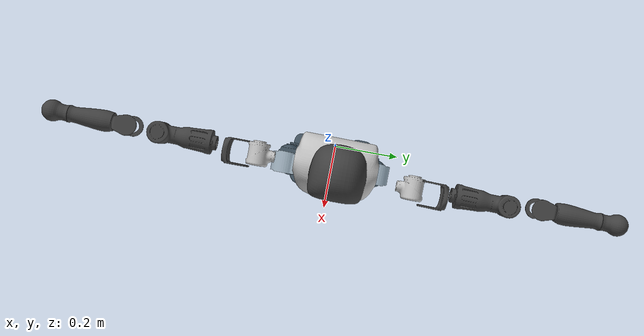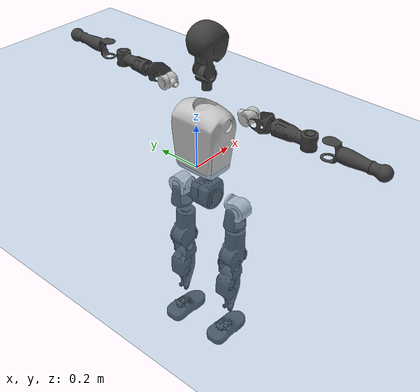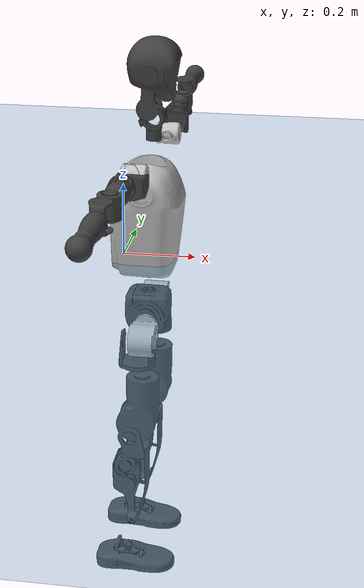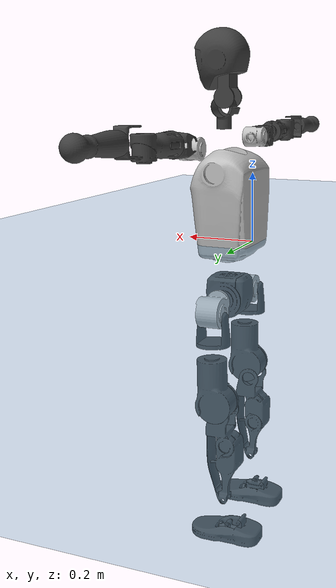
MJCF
<mujoco model="T1">
  <compiler angle="radian" assetdir="assets" balanceinertia="true" inertiafromgeom="false"/>

  <option timestep="0.005" density="1.2" viscosity="2e-05"/>

  <size nkey="1"/>

  <visual>
    <quality shadowsize="8192"/>
    <map shadowclip="0.5"/>
  </visual>

  <default>
    <default class="/">
      <joint armature="0.01" damping="0.01" frictionloss="0.1"/>
      <geom contype="0" conaffinity="0" group="1" solref="-1000 -80"/>
      <site size="0.01 0.005 0.005" group="5"/>
      <general forcelimited="true" biastype="affine" gainprm="25" biasprm="0 -25 -0.6"/>
      <default class="t1">
        <geom rgba="0.25 0.25 0.25 1"/>
        <default class="visual">
          <geom type="mesh" group="2"/>
        </default>
        <default class="collision">
          <geom group="3"/>
        </default>
        <default class="foot">
          <geom size="0.1115 0.05 0.015" type="box" condim="6" group="4" priority="1" solimp="0.015 1 0.015"/>
        </default>
        <default class="reward_collision_sphere">
          <geom group="5" rgba="1 0 0 1"/>
        </default>
      </default>
    </default>
  </default>

  <asset>
    <texture type="skybox" colorspace="auto" name="//unnamed_texture_0" builtin="gradient" rgb1="0.95 0.95 0.95" rgb2="0.95 0.95 0.95" width="100" height="600"/>
    <texture type="2d" colorspace="auto" name="texplane" builtin="checker" rgb1="0.345 0.575 0.748" rgb2="0.345 0.575 0.748" markrgb="1 1 1" width="512" height="512"/>
    <material name="MatPlane" class="/" texture="texplane" texuniform="true" texrepeat="2 2" specular="0.9"/>
    <mesh name="Trunk" class="/" file="Trunk.stl"/>
    <mesh name="H1" class="/" file="H1.stl"/>
    <mesh name="H2" class="/" file="H2.stl"/>
    <mesh name="AL1" class="/" file="AL1.stl"/>
    <mesh name="AL2" class="/" file="AL2.stl"/>
    <mesh name="AL3" class="/" file="AL3.stl"/>
    <mesh name="left_hand_link" class="/" file="left_hand_link.stl"/>
    <mesh name="AR1" class="/" file="AR1.stl"/>
    <mesh name="AR2" class="/" file="AR2.stl"/>
    <mesh name="AR3" class="/" file="AR3.stl"/>
    <mesh name="right_hand_link" class="/" file="right_hand_link.stl"/>
    <mesh name="Waist" class="/" file="Waist.stl"/>
    <mesh name="Hip_Pitch_Left" class="/" file="Hip_Pitch_Left.stl"/>
    <mesh name="Hip_Roll_Left" class="/" file="Hip_Roll_Left.stl"/>
    <mesh name="Hip_Yaw_Left" class="/" file="Hip_Yaw_Left.stl"/>
    <mesh name="Shank_Left" class="/" file="Shank_Left.stl"/>
    <mesh name="Ankle_Cross_Left" class="/" file="Ankle_Cross_Left.stl"/>
    <mesh name="left_foot_link" class="/" file="left_foot_link.stl"/>
    <mesh name="Hip_Pitch_Right" class="/" file="Hip_Pitch_Right.stl"/>
    <mesh name="Hip_Roll_Right" class="/" file="Hip_Roll_Right.stl"/>
    <mesh name="Hip_Yaw_Right" class="/" file="Hip_Yaw_Right.stl"/>
    <mesh name="Shank_Right" class="/" file="Shank_Right.stl"/>
    <mesh name="Ankle_Cross_Right" class="/" file="Ankle_Cross_Right.stl"/>
    <mesh name="right_foot_link" class="/" file="right_foot_link.stl"/>
  </asset>

  <worldbody>
    <geom name="floor" class="/" size="100 100 0.125" type="plane" group="0" material="MatPlane"/>
    <light name="toplight_shadow" class="/" pos="0 0 5" dir="0.0990148 0.0990148 -0.990148" type="directional" ambient="0.04 0.04 0.04" diffuse="0.55 0.55 0.55" specular="0.12 0.12 0.12"/>
    <light name="toplight_fill" class="/" pos="0 0 5" dir="0.0990148 0.0990148 -0.990148" type="directional" castshadow="false" ambient="0.04 0.04 0.04" diffuse="0.3 0.3 0.3" specular="0.08 0.08 0.08"/>
    <body name="trunk" childclass="t1" pos="0.00867815 0.0133072 -0.0101119" quat="0.999986 -0.00127063 0.00196941 -0.00477154">
      <inertial pos="0.0604769 0.00703383 0.134049" quat="0.999618 0.0110085 -0.0104543 -0.0230942" mass="29.9442" diaginertia="0.146806 0.499312 0.223269"/>
      <joint name="//unnamed_joint_0" type="free" armature="0" damping="0" frictionloss="0"/>
      <geom name="//unnamed_geom_1" class="visual" rgba="0.76 0.76 0.76 1" mesh="Trunk"/>
      <geom name="//unnamed_geom_2" class="collision" size="0.10092 0.13456 0.20184" pos="0.0672134 0 0.163327" type="box"/>
      <geom name="//unnamed_geom_3" class="reward_collision_sphere" size="0.154744" pos="0.0672134 0 0.136105"/>
      <geom name="//unnamed_geom_4" class="reward_collision_sphere" size="0.020184" pos="0.0672134 0.132219 0"/>
      <geom name="//unnamed_geom_5" class="reward_collision_sphere" size="0.020184" pos="0.0672134 -0.132219 0"/>
      <geom name="//unnamed_geom_6" class="reward_collision_sphere" size="0.020184" pos="0.0672134 0.16644 0.24499"/>
      <geom name="//unnamed_geom_7" class="reward_collision_sphere" size="0.020184" pos="0.0672134 -0.16644 0.24499"/>
      <site name="imu" pos="0.0561425 0.0739031 -0.012584" size="0.013456"/>
      <camera name="track" pos="0 -3.11104 0" quat="0.707107 0.707107 0 0" mode="trackcom"/>
      <camera name="ego_camera" pos="0.136667 0 0.571643" quat="-0.5 -0.5 0.5 0.5"/>
      <body name="H1" pos="0.0709641 0.00355497 0.333112" quat="0.999988 0.00263976 0.0041398 0.000904368">
        <inertial pos="-0.0106333 -0.00567505 0.0673414" quat="0.786736 0.017499 -0.0680512 0.613278" mass="1.04021" diaginertia="0.000369108 0.00160056 0.000734099"/>
        <joint name="AAHead_yaw" pos="0 0 0" axis="0.0396118 -0.0625705 0.997254" stiffness="0.0100629" range="-1.34189 1.47794" armature="0.00599661" damping="0.0086343" frictionloss="0.215708"/>
        <geom name="//unnamed_geom_8" class="visual" mesh="H1"/>
        <body name="H2" pos="-0.0141535 0.00445344 0.0874644" quat="0.999998 0.00121221 -0.00138763 0.000441361">
          <inertial pos="0.0045672 0.0178895 0.135208" quat="0.990501 0.0787194 -0.0778992 -0.0814981" mass="1.77635" diaginertia="0.00402409 0.0247301 0.00954361"/>
          <joint name="Head_pitch" pos="0 0 0" axis="0.0640849 -0.997866 0.0124807" stiffness="0.0444345" range="-1.12417 0.157176" armature="0.00980493" damping="0" frictionloss="0.189901"/>
          <geom name="//unnamed_geom_9" class="visual" mesh="H2"/>
          <geom name="//unnamed_geom_10" class="collision" size="0.107648" pos="0.0112022 0 0.149716"/>
          <geom name="//unnamed_geom_11" class="reward_collision_sphere" size="0.121104" pos="0.0224045 0 0.136105"/>
        </body>
      </body>
      <body name="AL1" pos="0.0754062 0.175496 0.293155" quat="0.999995 0.00293668 -0.00119858 0.000633858">
        <inertial pos="-0.00516391 0.0628127 0.016083" quat="0.449185 0.536028 -0.48345 0.526482" mass="1.00713" diaginertia="0.00192723 0.00956283 0.00113042"/>
        <joint name="Left_Shoulder_Pitch" pos="0 0 0" axis="0.0529819 0.997435 0.0481368" range="-3.30577 1.39543" armature="0.018116" damping="0.0272252" frictionloss="0.104006"/>
        <geom name="//unnamed_geom_12" class="visual" rgba="0.76 0.76 0.76 1" mesh="AL1"/>
        <body name="AL2" pos="0.00697146 0.0858028 0.0137222" quat="0.99996 0.00380917 0.00369187 -0.00719134">
          <inertial pos="0.00410285 0.0762898 -0.000938493" quat="0.489032 0.511369 -0.488563 0.510544" mass="0.39786" diaginertia="0.000683151 0.00355266 0.000838217"/>
          <joint name="Left_Shoulder_Roll" pos="0 0 0" axis="-0.996163 0.081066 0.0329825" stiffness="0.0806646" range="-1.8778 1.88239" armature="0.0197126" damping="0.0911622" frictionloss="0.0343042"/>
          <geom name="//unnamed_geom_13" class="visual" mesh="AL2"/>
          <body name="AL3" pos="-0.0112602 0.0771753 0.00403626" quat="0.99997 0.00398554 0.00598398 0.00298466">
            <inertial pos="0.000538127 0.146632 0.00757937" quat="0.73892 0.673423 -0.015356 -0.0162304" mass="2.18038" diaginertia="0.0248961 0.107818 0.00393951"/>
            <joint name="Left_Elbow_Pitch" pos="0 0 0" axis="-0.060775 -0.997779 -0.0272782" stiffness="0.0672328" range="-2.61769 2.59671" armature="0.00236138" damping="0.0891965" frictionloss="0.0490165"/>
            <geom name="//unnamed_geom_14" class="visual" mesh="AL3"/>
            <geom name="//unnamed_geom_15" class="collision" size="0.040368 0.10092" pos="0 0.0777759 0" quat="0.707105 0.707108 0 0" type="cylinder"/>
            <geom name="//unnamed_geom_16" class="reward_collision_sphere" size="0.0484416"/>
            <body name="left_hand_link" pos="-0.00941458 0.229412 0.0157939" quat="0.999983 -0.00457136 -0.00310093 -0.00196168">
              <inertial pos="0.00117242 0.169492 0.0139342" quat="0.704247 0.709648 0.0151218 0.0144229" mass="0.699131" diaginertia="0.012786 0.0790872 0.000935033"/>
              <joint name="Left_Elbow_Yaw" pos="0 0 0" axis="0.0492526 0.0236209 0.998507" range="-2.4279 -0.0331049" armature="0.017753" damping="0.00517412" frictionloss="0.0630267"/>
              <geom name="//unnamed_geom_17" class="visual" mesh="left_hand_link"/>
              <geom name="//unnamed_geom_18" class="collision" size="0.040368 0.11774" pos="0 0.202217 0" quat="0.707105 0.707108 0 0" type="cylinder"/>
              <geom name="//unnamed_geom_19" class="reward_collision_sphere" size="0.06728"/>
              <geom name="//unnamed_geom_20" class="reward_collision_sphere" size="0.047096" pos="0 0.171107 0"/>
              <geom name="//unnamed_geom_21" class="reward_collision_sphere" size="0.047096" pos="0 0.334436 0"/>
            </body>
          </body>
        </body>
      </body>
      <body name="AR1" pos="0.061566 -0.173245 0.298308" quat="0.999988 1.38042e-05 0.00460826 0.00180947">
        <inertial pos="-0.00230433 -0.0550457 -0.0152531" quat="0.498373 0.505871 -0.500827 0.494865" mass="1.28135" diaginertia="0.00259623 0.0115249 0.00106492"/>
        <joint name="Right_Shoulder_Pitch" pos="0 0 0" axis="-0.00516628 -0.999987 -0.000492802" range="-1.08355 3.30778" armature="0.0203976" damping="0" frictionloss="0.0951979"/>
        <geom name="//unnamed_geom_22" class="visual" rgba="0.76 0.76 0.76 1" mesh="AR1"/>
        <body name="AR2" pos="0.00429168 -0.0870677 -0.00278328" quat="0.999999 -0.00057938 0.000870229 0.000360145">
          <inertial pos="0.00351143 -0.0600571 0.0160398" quat="0.487728 0.465972 -0.551886 0.49032" mass="0.311906" diaginertia="0.000742107 0.00344323 0.00088758"/>
          <joint name="Right_Shoulder_Roll" pos="0 0 0" axis="-1 0.000678525 -0.000298002" range="-1.5952 1.27777" armature="0.013724" damping="0.0847183" frictionloss="0.133476"/>
          <geom name="//unnamed_geom_23" class="visual" mesh="AR2"/>
          <body name="AR3" pos="-0.0123755 -0.0895993 0.0112269" quat="0.999998 0.000375468 -0.0017528 -0.000358614">
            <inertial pos="-0.00796302 -0.122523 0.00493289" quat="0.7108 0.703389 -0.00265856 0.000401314" mass="2.15201" diaginertia="0.0206969 0.0891558 0.00228004"/>
            <joint name="Right_Elbow_Pitch" pos="0 0 0" axis="0.0302996 0.999196 -0.0262425" stiffness="0.0561828" range="-2.25879 2.27753" armature="0.00304606" damping="0.00269599" frictionloss="0.236306"/>
            <geom name="//unnamed_geom_24" class="visual" mesh="AR3"/>
            <geom name="//unnamed_geom_25" class="collision" size="0.040368 0.10092" pos="0 -0.0777759 0" quat="0.707105 0.707108 0 0" type="cylinder"/>
            <geom name="//unnamed_geom_26" class="reward_collision_sphere" size="0.0484416"/>
            <body name="right_hand_link" pos="-0.00295832 -0.231955 0.00345511" quat="0.999986 0.00133069 0.000670176 -0.00509895">
              <inertial pos="0.00656974 -0.167245 0.0176692" quat="0.755979 0.653597 -0.0356574 -0.00600982" mass="0.617375" diaginertia="0.0170597 0.0739578 0.000865986"/>
              <joint name="Right_Elbow_Yaw" pos="0 0 0" axis="0.0496108 0.0151898 0.998653" stiffness="0.0730123" range="0.305729 2.11165" armature="0.0177838" damping="0.0389237" frictionloss="0.0883441"/>
              <geom name="//unnamed_geom_27" class="visual" mesh="right_hand_link"/>
              <geom name="//unnamed_geom_28" class="collision" size="0.040368 0.11774" pos="0 -0.202217 0" quat="0.707105 0.707108 0 0" type="cylinder"/>
              <geom name="//unnamed_geom_29" class="reward_collision_sphere" size="0.06728"/>
              <geom name="//unnamed_geom_30" class="reward_collision_sphere" size="0.047096" pos="0 -0.171107 0"/>
              <geom name="//unnamed_geom_31" class="reward_collision_sphere" size="0.047096" pos="0 -0.334436 0"/>
            </body>
          </body>
        </body>
      </body>
      <body name="Waist" pos="0.0606021 -0.00810495 -0.162015" quat="0.999991 0.00252654 0.0018425 0.00278879">
        <inertial pos="-0.00213545 -0.00208213 5.09549e-05" quat="0.973351 0.000852539 -0.229242 0.00599836" mass="7.15839" diaginertia="0.011034 0.0503982 0.0223453"/>
        <joint name="Waist" pos="0 0 0" axis="0.0726529 0.00520596 0.997344" stiffness="0.0879553" range="-1.56943 1.63505" armature="0.00818063" damping="0" frictionloss="0.228382"/>
        <geom name="//unnamed_geom_32" class="visual" mesh="Waist"/>
        <body name="Hip_Pitch_Left" pos="-0.00370415 0.150145 0.0081119" quat="0.999991 0.00120599 0.00218436 -0.00332583">
          <inertial pos="-0.0153743 -0.0208364 -0.00999206" quat="0.965962 0.25076 -0.055401 0.0311115" mass="2.12516" diaginertia="0.00307479 0.0130589 0.00525021"/>
          <joint name="Left_Hip_Pitch" pos="0 0 0" axis="-0.0184314 0.998914 0.0427823" stiffness="0.0124487" range="-1.79875 1.26928" armature="0.0161175" damping="0.0775636" frictionloss="0.169719"/>
          <geom name="//unnamed_geom_33" class="visual" rgba="0.76 0.76 0.76 1" mesh="Hip_Pitch_Left"/>
          <body name="Hip_Roll_Left" pos="0.00116117 -0.00601446 -0.0421208" quat="0.999994 0.00189379 0.00256308 0.00127737">
            <inertial pos="0.0128435 -0.0134685 -0.0709887" quat="0.742286 0.018164 0.0157584 0.669652" mass="1.0423" diaginertia="0.00298532 0.0196527 0.00295894"/>
            <joint name="Left_Hip_Roll" pos="0 0 0" axis="-0.999039 -0.0432611 -0.00707281" stiffness="0.0231904" range="-1.53508 0.0176711" armature="0.0119084" damping="0" frictionloss="0.216255"/>
            <geom name="//unnamed_geom_34" class="visual" mesh="Hip_Roll_Left"/>
            <geom name="//unnamed_geom_35" class="reward_collision_sphere" size="0.0740079"/>
            <body name="Hip_Yaw_Left" pos="0.00852683 -0.0127584 -0.124082" quat="1 -8.45775e-05 -6.54835e-05 2.35255e-05">
              <inertial pos="-0.00828108 0.00213023 -0.117006" quat="0.68798 -0.0952094 -0.0820108 0.714768" mass="6.89532" diaginertia="0.0508937 0.241858 0.0149439"/>
              <joint name="Left_Hip_Yaw" pos="0 0 0" axis="0.0656256 -0.0391546 -0.997076" stiffness="0.0256744" range="-1.20367 1.263" armature="0.0162092" damping="0.00545673" frictionloss="0.12185"/>
              <geom name="//unnamed_geom_36" class="visual" mesh="Hip_Yaw_Left"/>
              <geom name="//unnamed_geom_37" class="collision" size="0.06728 0.107648" type="cylinder"/>
              <body name="Shank_Left" pos="-0.0284663 -0.0147505 -0.168123" quat="0.999999 -0.000845791 0.000828821 0.000816138">
                <inertial pos="-0.0124729 0.0168595 -0.16909" quat="0.998594 -0.00820727 -0.0261023 0.045399" mass="4.34646" diaginertia="0.049951 0.313202 0.00710717"/>
                <joint name="Left_Knee_Pitch" pos="0 0 0" axis="-0.0153206 0.999883 9.50812e-05" stiffness="0.00402571" range="-0.201797 2.34123" armature="0.00807713" damping="0" frictionloss="0.0143279"/>
                <geom name="//unnamed_geom_38" class="visual" mesh="Shank_Left"/>
                <geom name="//unnamed_geom_39" class="collision" size="0.06728 0.10092" pos="0 0 -0.163327" type="cylinder"/>
                <geom name="//unnamed_geom_40" class="reward_collision_sphere" size="0.0874639"/>
                <body name="Ankle_Cross_Left" pos="-0.00724023 -0.00574706 -0.369783" quat="1 -0.000131552 6.43126e-05 -0.00059905">
                  <inertial pos="-0.00103123 0.00342256 -0.0215101" quat="0.4509 0.545519 0.534757 0.461664" mass="0.249129" diaginertia="5.21828e-05 0.000344411 6.80846e-05"/>
                  <joint name="Left_Ankle_Pitch" pos="0 0 0" axis="0.0822626 0.996516 0.013765" stiffness="0.0804782" range="-0.709708 0.475941" armature="0.0135437" damping="0" frictionloss="0.198355"/>
                  <geom name="//unnamed_geom_41" class="visual" mesh="Ankle_Cross_Left"/>
                  <body name="left_foot_link" pos="0.00279659 -0.0101276 -0.0171705" quat="0.999965 -0.00278941 0.0035096 -0.00702554">
                    <inertial pos="-0.0158068 -0.00155637 -0.00387477" quat="-0.0429456 0.64395 0.0414197 0.762738" mass="1.53928" diaginertia="0.00415318 0.0190073 0.0104717"/>
                    <joint name="Left_Ankle_Roll" pos="0 0 0" axis="-0.999629 0.00434874 0.0268933" stiffness="0.0115686" range="-0.436794 0.645695" armature="0.0130212" damping="0.0682209" frictionloss="0.0794969"/>
                    <geom name="//unnamed_geom_42" class="visual" mesh="left_foot_link"/>
                    <geom name="left_foot" class="foot" size="0.0797737 0.0885082 0.033599" pos="0.0112022 0 -0.0204158"/>
                    <geom name="//unnamed_geom_44" class="reward_collision_sphere" size="0.0699711" pos="0.0112022 0 -0.0204158"/>
                    <geom name="//unnamed_geom_45" class="reward_collision_sphere" size="0.040368" pos="0.106421 -0.0357769 -0.0204158"/>
                    <geom name="//unnamed_geom_46" class="reward_collision_sphere" size="0.040368" pos="-0.0784157 -0.0357769 -0.0204158"/>
                    <site name="left_foot" class="foot" pos="0.0112022 0 -0.0204158" size="0.013456"/>
                  </body>
                </body>
              </body>
            </body>
          </body>
        </body>
        <body name="Hip_Pitch_Right" pos="0.0133589 -0.167873 0.00644082" quat="0.999983 0.0036756 -0.00453357 0.000775897">
          <inertial pos="0.0112109 0.0188928 -0.0380847" quat="0.970041 -0.242624 0.0124159 -1.83734e-05" mass="2.33111" diaginertia="0.00257917 0.0116267 0.00532321"/>
          <joint name="Right_Hip_Pitch" pos="0 0 0" axis="-0.0156349 -0.99962 0.0226916" range="-1.5623 1.85644" armature="0.0156609" damping="0.0617968" frictionloss="0.0517801"/>
          <geom name="//unnamed_geom_47" class="visual" rgba="0.76 0.76 0.76 1" mesh="Hip_Pitch_Right"/>
          <body name="Hip_Roll_Right" pos="-0.0141299 0.00710885 -0.0181586" quat="0.999999 0.00067027 0.000907226 -8.51457e-05">
            <inertial pos="0.0157687 0.0101218 -0.0600443" quat="0.681081 0.028106 -0.00913463 0.731611" mass="0.794054" diaginertia="0.00302117 0.0141346 0.00274663"/>
            <joint name="Right_Hip_Roll" pos="0 0 0" axis="-0.99942 -0.0329939 -0.00839125" range="0.0151692 1.67258" armature="0.00619425" damping="0" frictionloss="0.201729"/>
            <geom name="//unnamed_geom_48" class="visual" mesh="Hip_Roll_Right"/>
            <geom name="//unnamed_geom_49" class="reward_collision_sphere" size="0.0740079"/>
            <body name="Hip_Yaw_Right" pos="0.0110343 0.00498822 -0.114598" quat="0.999999 -0.00120875 4.86876e-05 0.000349861">
              <inertial pos="-0.00903486 0.0143963 -0.137569" quat="0.72576 -0.00959781 -0.0365159 0.686911" mass="4.2003" diaginertia="0.0427247 0.156354 0.0115064"/>
              <joint name="Right_Hip_Yaw" pos="0 0 0" axis="0.000171654 0.000787945 -1" range="-0.926495 0.96422" armature="0.0245265" damping="0.0528007" frictionloss="0.171292"/>
              <geom name="//unnamed_geom_50" class="visual" mesh="Hip_Yaw_Right"/>
              <geom name="//unnamed_geom_51" class="collision" size="0.06728 0.107648" type="cylinder"/>
              <body name="Shank_Right" pos="-0.0311161 0.00269295 -0.17408" quat="1 4.89645e-05 2.89988e-05 -5.27187e-05">
                <inertial pos="-0.0232228 -0.0180342 -0.174762" quat="0.996724 -0.033112 -0.0730178 -0.0106329" mass="3.44006" diaginertia="0.0382498 0.278027 0.00822819"/>
                <joint name="Right_Knee_Pitch" pos="0 0 0" axis="0.0618532 -0.996909 0.0484449" stiffness="0.0348186" range="-2.33103 -0.0438839" armature="0.00930396" damping="0.00162969" frictionloss="0.0706022"/>
                <geom name="//unnamed_geom_52" class="visual" mesh="Shank_Right"/>
                <geom name="//unnamed_geom_53" class="collision" size="0.06728 0.10092" pos="0 0 -0.163327" type="cylinder"/>
                <geom name="//unnamed_geom_54" class="reward_collision_sphere" size="0.0874639"/>
                <body name="Ankle_Cross_Right" pos="-0.0103696 -0.00735268 -0.378315" quat="0.999994 0.00181305 -0.00291798 5.24034e-05">
                  <inertial pos="-0.012232 -0.010502 -0.0101462" quat="0.480149 0.537057 0.523724 0.454686" mass="0.205042" diaginertia="4.28531e-05 0.000228412 5.95919e-05"/>
                  <joint name="Right_Ankle_Pitch" pos="0 0 0" axis="-0.0778841 -0.996034 0.0430067" stiffness="0.0287786" range="-0.194495 0.814035" armature="0.0089486" damping="0.00628872" frictionloss="0.0854349"/>
                  <geom name="//unnamed_geom_55" class="visual" mesh="Ankle_Cross_Right"/>
                  <body name="right_foot_link" pos="0.00793794 0.0134785 -0.0293052" quat="0.999999 -0.000552339 0.00124062 -0.000225312">
                    <inertial pos="-0.0167201 0.00163756 -0.0238023" quat="0.0396739 0.645925 0.0374428 0.761449" mass="1.60445" diaginertia="0.00374514 0.0227138 0.0115273"/>
                    <joint name="Right_Ankle_Roll" pos="0 0 0" axis="-0.997706 -0.0667521 0.0112565" range="-0.430204 0.604438" armature="0.00761664" damping="0.0100289" frictionloss="0.239323"/>
                    <geom name="//unnamed_geom_56" class="visual" mesh="right_foot_link"/>
                    <geom name="right_foot" class="foot" size="0.0820678 0.0836941 0.0285228" pos="0.0112022 0 -0.0204158"/>
                    <geom name="//unnamed_geom_58" class="reward_collision_sphere" size="0.053824"/>
                    <geom name="//unnamed_geom_59" class="reward_collision_sphere" size="0.040368" pos="0.0112022 0 -0.0204158"/>
                    <geom name="//unnamed_geom_60" class="reward_collision_sphere" size="0.040368" pos="0.106421 0.0357769 -0.0204158"/>
                    <geom name="//unnamed_geom_61" class="reward_collision_sphere" size="0.040368" pos="-0.0784157 0.0357769 -0.0204158"/>
                    <site name="right_foot" class="foot" pos="0.0112022 0 -0.0204158" size="0.013456"/>
                  </body>
                </body>
              </body>
            </body>
          </body>
        </body>
      </body>
    </body>
  </worldbody>

  <contact>
    <pair class="/" geom1="floor" geom2="left_foot" name="//unnamed_contact_0"/>
    <pair class="/" geom1="floor" geom2="right_foot" name="//unnamed_contact_1"/>
  </contact>

  <actuator>
    <general name="AAHead_yaw" class="/" joint="AAHead_yaw" forcerange="-14.5957 14.5957" gainprm="38.636" biasprm="0 -38.636 -0.756795"/>
    <general name="Head_pitch" class="/" joint="Head_pitch" forcerange="-6.5437 6.5437" gainprm="38.636" biasprm="0 -38.636 -0.756795"/>
    <general name="Left_Shoulder_Pitch" class="/" joint="Left_Shoulder_Pitch" forcerange="-22.1733 22.1733" gainprm="38.636" biasprm="0 -38.636 -0.756795"/>
    <general name="Left_Shoulder_Roll" class="/" joint="Left_Shoulder_Roll" forcerange="-16.1193 16.1193" gainprm="38.636" biasprm="0 -38.636 -0.756795"/>
    <general name="Left_Elbow_Pitch" class="/" joint="Left_Elbow_Pitch" forcerange="-12.4077 12.4077" gainprm="38.636" biasprm="0 -38.636 -0.756795"/>
    <general name="Left_Elbow_Yaw" class="/" joint="Left_Elbow_Yaw" forcerange="-9.07018 9.07018" gainprm="38.636" biasprm="0 -38.636 -0.756795"/>
    <general name="Right_Shoulder_Pitch" class="/" joint="Right_Shoulder_Pitch" forcerange="-24.9347 24.9347" gainprm="38.636" biasprm="0 -38.636 -0.756795"/>
    <general name="Right_Shoulder_Roll" class="/" joint="Right_Shoulder_Roll" forcerange="-12.3433 12.3433" gainprm="38.636" biasprm="0 -38.636 -0.756795"/>
    <general name="Right_Elbow_Pitch" class="/" joint="Right_Elbow_Pitch" forcerange="-14.2746 14.2746" gainprm="38.636" biasprm="0 -38.636 -0.756795"/>
    <general name="Right_Elbow_Yaw" class="/" joint="Right_Elbow_Yaw" forcerange="-35.5025 35.5025" gainprm="38.636" biasprm="0 -38.636 -0.756795"/>
    <general name="Waist" class="/" joint="Waist" forcerange="-41.8603 41.8603" gainprm="38.636" biasprm="0 -38.636 -0.756795"/>
    <general name="Left_Hip_Pitch" class="/" joint="Left_Hip_Pitch" forcerange="-36.3594 36.3594" gainprm="38.636" biasprm="0 -38.636 -0.756795"/>
    <general name="Left_Hip_Roll" class="/" joint="Left_Hip_Roll" forcerange="-47.6384 47.6384" gainprm="38.636" biasprm="0 -38.636 -0.756795"/>
    <general name="Left_Hip_Yaw" class="/" joint="Left_Hip_Yaw" forcerange="-29.2117 29.2117" gainprm="38.636" biasprm="0 -38.636 -0.756795"/>
    <general name="Left_Knee_Pitch" class="/" joint="Left_Knee_Pitch" forcerange="-78.5181 78.5181" gainprm="38.636" biasprm="0 -38.636 -0.756795"/>
    <general name="Left_Ankle_Pitch" class="/" joint="Left_Ankle_Pitch" forcerange="-20.1638 20.1638" gainprm="38.636" biasprm="0 -38.636 -0.756795"/>
    <general name="Left_Ankle_Roll" class="/" joint="Left_Ankle_Roll" forcerange="-19.7517 19.7517" gainprm="38.636" biasprm="0 -38.636 -0.756795"/>
    <general name="Right_Hip_Pitch" class="/" joint="Right_Hip_Pitch" forcerange="-67.7114 67.7114" gainprm="38.636" biasprm="0 -38.636 -0.756795"/>
    <general name="Right_Hip_Roll" class="/" joint="Right_Hip_Roll" forcerange="-39.7887 39.7887" gainprm="38.636" biasprm="0 -38.636 -0.756795"/>
    <general name="Right_Hip_Yaw" class="/" joint="Right_Hip_Yaw" forcerange="-37.057 37.057" gainprm="38.636" biasprm="0 -38.636 -0.756795"/>
    <general name="Right_Knee_Pitch" class="/" joint="Right_Knee_Pitch" forcerange="-109.907 109.907" gainprm="38.636" biasprm="0 -38.636 -0.756795"/>
    <general name="Right_Ankle_Pitch" class="/" joint="Right_Ankle_Pitch" forcerange="-39.9709 39.9709" gainprm="38.636" biasprm="0 -38.636 -0.756795"/>
    <general name="Right_Ankle_Roll" class="/" joint="Right_Ankle_Roll" forcerange="-11.9882 11.9882" gainprm="38.636" biasprm="0 -38.636 -0.756795"/>
  </actuator>

  <sensor>
    <gyro site="imu" name="imu_angular_velocity"/>
    <velocimeter site="imu" name="imu_linear_velocity"/>
    <framelinvel objtype="site" objname="left_foot" name="left_foot_global_linear_velocity"/>
    <framelinvel objtype="site" objname="right_foot" name="right_foot_global_linear_velocity"/>
  </sensor>

  <keyframe>
    <key name="home" qpos="0 0 0.6385 1 0 0 0 0 0 0 1.4 0 -0.4 0 -1.4 0 0.4 0 -0.4 0 0 0.8 -0.4 0 0.4 0 0 -0.8 0.4 0"/>
  </keyframe>
</mujoco>
